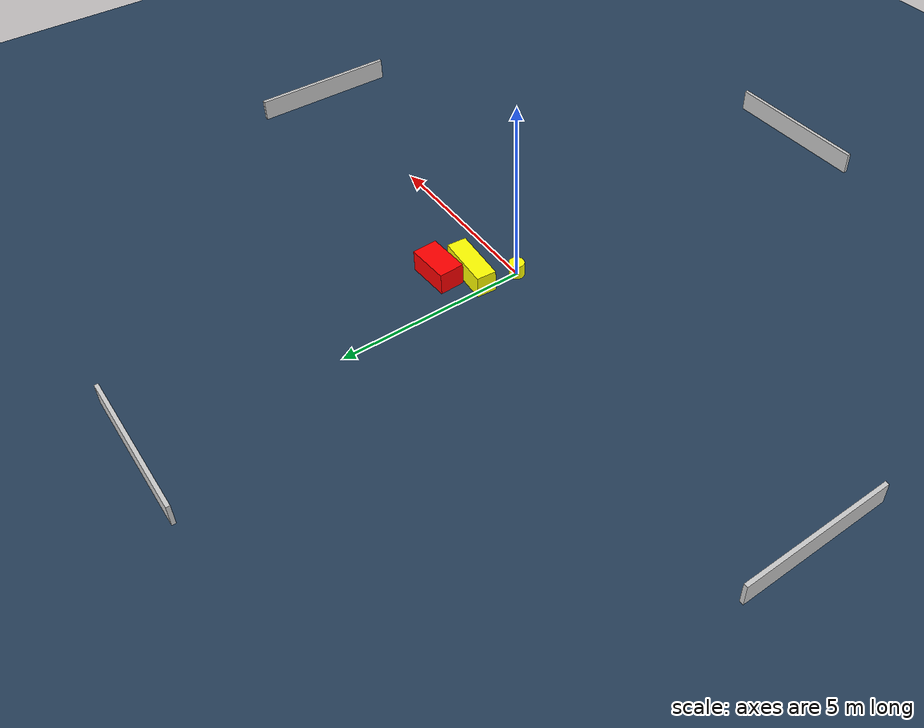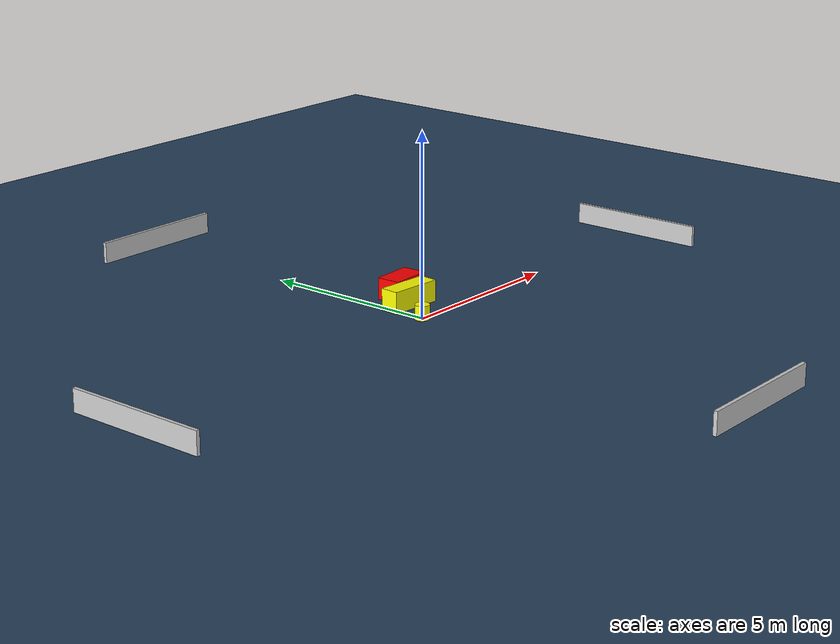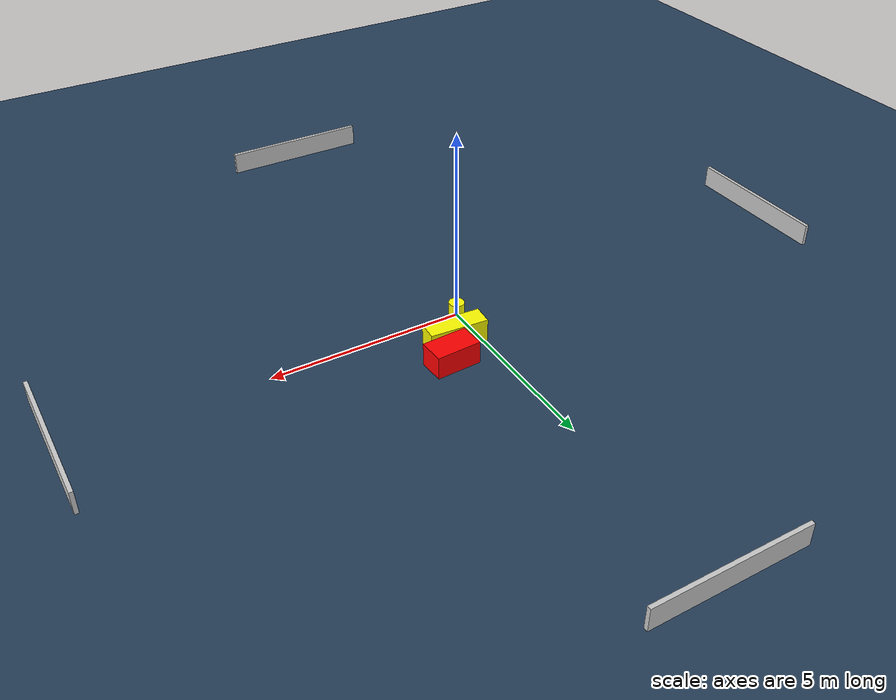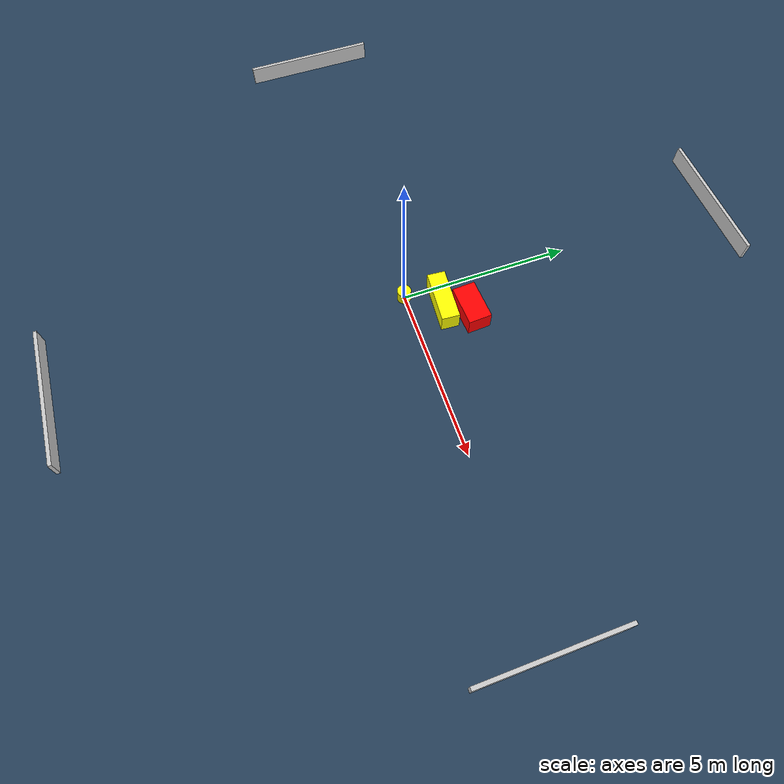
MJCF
<?xml version="1.0" ?>
<mujoco model="generated_environment">
  <option timestep="0.01" integrator="RK4" cone="elliptic"/>
  <default>
    <geom density="1"/>
  </default>
  <asset>
    <texture builtin="gradient" height="3072" name="skybox" rgb1="0.3 0.5 0.7" rgb2="0 0 0" type="skybox" width="512"/>
    <texture builtin="checker" height="300" name="groundplane" rgb1="0.2 0.3 0.4" rgb2="0.1 0.2 0.3" type="2d" width="300"/>
    <material name="groundplane" reflectance="0.2" texrepeat="5 5" texture="groundplane"/>
  </asset>
  <worldbody>
    <light dir="0 0 -1" directional="true" pos="0 0 1.5"/>
    <geom condim="3" friction="0.5 0.005 0.001" material="groundplane" name="floor" pos="0 0 0" size="0 0 0.05" type="plane"/>
    <body name="walls">
      <geom name="wall_1" condim="4" pos="-10.0 0.0 0.3" rgba="0.800000011920929 0.800000011920929 0.800000011920929 1.0" size="0.05 2.0 0.3" type="box"/>
      <geom name="wall_2" condim="4" pos="10.0 0.0 0.3" rgba="0.800000011920929 0.800000011920929 0.800000011920929 1.0" size="0.05 2.0 0.3" type="box"/>
      <geom name="wall_3" condim="4" pos="0.0 -10.0 0.3" rgba="0.800000011920929 0.800000011920929 0.800000011920929 1.0" size="2.0 0.05 0.3" type="box"/>
      <geom name="wall_4" condim="4" pos="0.0 10.0 0.3" rgba="0.800000011920929 0.800000011920929 0.800000011920929 1.0" size="2.0 0.05 0.3" type="box"/>
    </body>
    <body name="robot">
      <joint name="joint_x" type="slide" pos="0 0 0" axis="1 0 0"/>
      <joint name="joint_y" type="slide" pos="0 0 0" axis="0 1 0"/>
      <geom name="robot" type="cylinder" pos="0.0 0.0 0.2" size="0.2 0.2 0.0" mass="5.0" friction="1.0 0.005 0.0001" condim="4" rgba="1.0 1.0 0.0 1.0"/>
    </body>
    <body name="obstacle_1_movable">
      <geom name="obstacle_1_movable" condim="4" pos="0.6059391805315075 0.9578737953471281 0.3" euler="0 0 175.73527433246014" friction="0.0 0.005 0.001" rgba="1.0 1.0 0.0 1.0" size="0.7491789145487817 0.26142627035109733 0.3" type="box" mass="0.1"/>
      <joint type="free"/>
    </body>
    <body name="obstacle_2_static">
      <geom name="obstacle_2_static" condim="4" pos="1.0940456947240673 1.6254326448215863 0.3" euler="0 0 2.88828748480082" friction="0.0 0.005 0.001" rgba="1.0 0.0 0.0 1.0" size="0.5813789051496148 0.3361787680174601 0.3" type="box"/>
    </body>
  </worldbody>
  <actuator>
    <motor name="actuator_x" joint="joint_x" gear="1" ctrlrange="-1 1"/>
    <motor name="actuator_y" joint="joint_y" gear="1" ctrlrange="-1 1"/>
  </actuator>
</mujoco>
